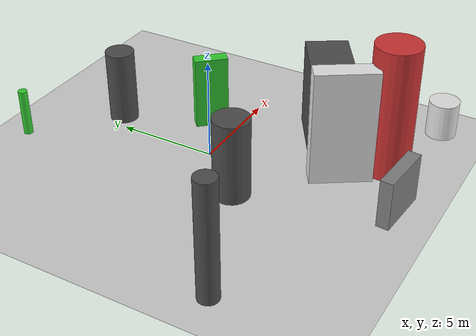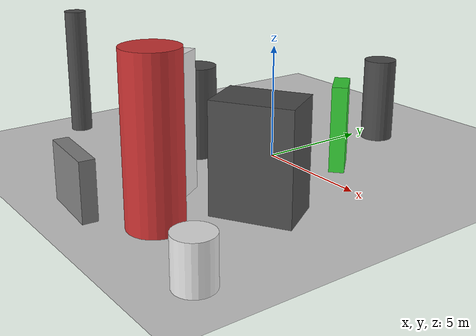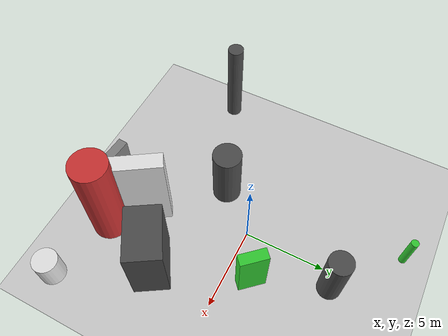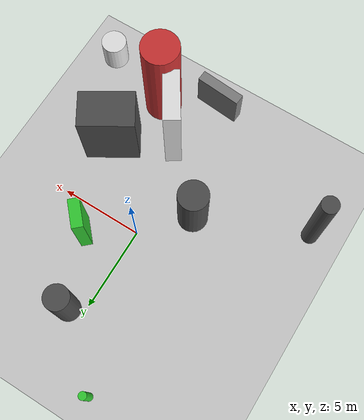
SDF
<?xml version='1.0'?>
<sdf version='1.6'>
  <world name='default'>
    <!-- Sun light -->
    <light name='sun' type='directional'>
      <cast_shadows>1</cast_shadows>
      <pose>0 0 10 0 0 0</pose>
      <diffuse>0.8 0.8 0.8 1</diffuse>
      <specular>0.2 0.2 0.2 1</specular>
      <attenuation>
        <range>1000</range>
        <constant>0.9</constant>
        <linear>0.01</linear>
        <quadratic>0.001</quadratic>
      </attenuation>
      <direction>-0.5 0.1 -0.9</direction>
    </light>

    <!-- Ground plane -->
    <model name='ground_plane'>
      <static>1</static>
      <link name='link'>
        <collision name='collision'>
          <geometry>
            <plane>
              <normal>0 0 1</normal>
              <size>100 100</size>
            </plane>
          </geometry>
          <surface>
            <contact>
              <collide_bitmask>65535</collide_bitmask>
              <ode/>
            </contact>
            <friction>
              <ode>
                <mu>100</mu>
                <mu2>50</mu2>
              </ode>
              <torsional><ode/></torsional>
            </friction>
            <bounce/>
          </surface>
          <max_contacts>10</max_contacts>
        </collision>
        <visual name='visual'>
          <cast_shadows>0</cast_shadows>
          <geometry>
            <plane>
              <normal>0 0 1</normal>
              <size>100 100</size>
            </plane>
          </geometry>
          <material>
            <script>
              <uri>file://media/materials/scripts/gazebo.material</uri>
              <n>Gazebo/Grey</n>
            </script>
          </material>
        </visual>
      </link>
    </model>

    <!-- Environment -->
    <magnetic_field>6e-06 2.3e-05 -4.2e-05</magnetic_field>
    <atmosphere type='adiabatic'/>
    <physics name='default_physics' default='0' type='ode'>
      <gravity>0 0 -9.8</gravity>
      <max_step_size>0.004</max_step_size>
      <real_time_factor>1</real_time_factor>
      <real_time_update_rate>250</real_time_update_rate>
    </physics>
    <scene>
      <ambient>0.4 0.4 0.4 1</ambient>
      <background>0.7 0.7 0.7 1</background>
      <shadows>1</shadows>
    </scene>
    <wind/>
    <spherical_coordinates>
      <surface_model>EARTH_WGS84</surface_model>
      <latitude_deg>0</latitude_deg>
      <longitude_deg>0</longitude_deg>
      <elevation>0</elevation>
      <heading_deg>0</heading_deg>
    </spherical_coordinates>

    <!-- ============ OBSTACLES (10) ============ -->
    <model name='obs_00'>
      <static>1</static>
      <link name='link'>
        <visual name='visual'>
          <geometry>
            <box>
              <size>1.6638 0.6552 3.7301</size>
            </box>
          </geometry>
          <material>
            <script>
              <n>Gazebo/Green</n>
              <uri>file://media/materials/scripts/gazebo.material</uri>
            </script>
            <ambient>0.2 0.8 0.2 1</ambient>
          </material>
        </visual>
        <collision name='collision'>
          <geometry>
            <box>
              <size>1.6638 0.6552 3.7301</size>
            </box>
          </geometry>
          <max_contacts>10</max_contacts>
          <surface>
            <contact><ode/></contact>
            <bounce/>
            <friction>
              <ode><mu>1</mu><mu2>1</mu2></ode>
              <torsional><ode/></torsional>
            </friction>
          </surface>
        </collision>
      </link>
      <pose>2.6391 1.5009 1.8650 0 0 2.3097</pose>
    </model>

    <model name='obs_01'>
      <static>1</static>
      <link name='link'>
        <visual name='visual'>
          <geometry>
            <box>
              <size>3.2270 2.1262 4.4769</size>
            </box>
          </geometry>
          <material>
            <script>
              <n>Gazebo/DarkGrey</n>
              <uri>file://media/materials/scripts/gazebo.material</uri>
            </script>
            <ambient>0.3 0.3 0.3 1</ambient>
          </material>
        </visual>
        <collision name='collision'>
          <geometry>
            <box>
              <size>3.2270 2.1262 4.4769</size>
            </box>
          </geometry>
          <max_contacts>10</max_contacts>
          <surface>
            <contact><ode/></contact>
            <bounce/>
            <friction>
              <ode><mu>1</mu><mu2>1</mu2></ode>
              <torsional><ode/></torsional>
            </friction>
          </surface>
        </collision>
      </link>
      <pose>4.3709 -4.1746 2.2385 0 0 0.5501</pose>
    </model>

    <model name='obs_02'>
      <static>1</static>
      <link name='link'>
        <visual name='visual'>
          <geometry>
            <box>
              <size>0.9720 3.0062 5.7180</size>
            </box>
          </geometry>
          <material>
            <script>
              <n>Gazebo/White</n>
              <uri>file://media/materials/scripts/gazebo.material</uri>
            </script>
            <ambient>0.9 0.9 0.9 1</ambient>
          </material>
        </visual>
        <collision name='collision'>
          <geometry>
            <box>
              <size>0.9720 3.0062 5.7180</size>
            </box>
          </geometry>
          <max_contacts>10</max_contacts>
          <surface>
            <contact><ode/></contact>
            <bounce/>
            <friction>
              <ode><mu>1</mu><mu2>1</mu2></ode>
              <torsional><ode/></torsional>
            </friction>
          </surface>
        </collision>
      </link>
      <pose>1.4133 -6.2537 2.8590 0 0 0.5726</pose>
    </model>

    <model name='obs_03'>
      <static>1</static>
      <link name='link'>
        <visual name='visual'>
          <geometry>
            <cylinder>
              <radius>0.2310</radius>
              <length>2.3963</length>
            </cylinder>
          </geometry>
          <material>
            <script>
              <n>Gazebo/Green</n>
              <uri>file://media/materials/scripts/gazebo.material</uri>
            </script>
            <ambient>0.2 0.8 0.2 1</ambient>
          </material>
        </visual>
        <collision name='collision'>
          <geometry>
            <cylinder>
              <radius>0.2310</radius>
              <length>2.3963</length>
            </cylinder>
          </geometry>
          <max_contacts>10</max_contacts>
          <surface>
            <contact><ode/></contact>
            <bounce/>
            <friction>
              <ode><mu>1</mu><mu2>1</mu2></ode>
              <torsional><ode/></torsional>
            </friction>
          </surface>
        </collision>
      </link>
      <pose>-2.7879 9.0681 1.1981 0 0 0.9219</pose>
    </model>

    <model name='obs_04'>
      <static>1</static>
      <link name='link'>
        <visual name='visual'>
          <geometry>
            <cylinder>
              <radius>0.7236</radius>
              <length>3.7876</length>
            </cylinder>
          </geometry>
          <material>
            <script>
              <n>Gazebo/DarkGrey</n>
              <uri>file://media/materials/scripts/gazebo.material</uri>
            </script>
            <ambient>0.3 0.3 0.3 1</ambient>
          </material>
        </visual>
        <collision name='collision'>
          <geometry>
            <cylinder>
              <radius>0.7236</radius>
              <length>3.7876</length>
            </cylinder>
          </geometry>
          <max_contacts>10</max_contacts>
          <surface>
            <contact><ode/></contact>
            <bounce/>
            <friction>
              <ode><mu>1</mu><mu2>1</mu2></ode>
              <torsional><ode/></torsional>
            </friction>
          </surface>
        </collision>
      </link>
      <pose>0.8816 5.7282 1.8938 0 0 0.9915</pose>
    </model>

    <model name='obs_05'>
      <static>1</static>
      <link name='link'>
        <visual name='visual'>
          <geometry>
            <box>
              <size>0.6282 2.7642 2.4306</size>
            </box>
          </geometry>
          <material>
            <script>
              <n>Gazebo/Grey</n>
              <uri>file://media/materials/scripts/gazebo.material</uri>
            </script>
            <ambient>0.5 0.5 0.5 1</ambient>
          </material>
        </visual>
        <collision name='collision'>
          <geometry>
            <box>
              <size>0.6282 2.7642 2.4306</size>
            </box>
          </geometry>
          <max_contacts>10</max_contacts>
          <surface>
            <contact><ode/></contact>
            <bounce/>
            <friction>
              <ode><mu>1</mu><mu2>1</mu2></ode>
              <torsional><ode/></torsional>
            </friction>
          </surface>
        </collision>
      </link>
      <pose>0.1525 -9.5933 1.2153 0 0 1.4872</pose>
    </model>

    <model name='obs_06'>
      <static>1</static>
      <link name='link'>
        <visual name='visual'>
          <geometry>
            <cylinder>
              <radius>0.7641</radius>
              <length>1.8713</length>
            </cylinder>
          </geometry>
          <material>
            <script>
              <n>Gazebo/White</n>
              <uri>file://media/materials/scripts/gazebo.material</uri>
            </script>
            <ambient>0.9 0.9 0.9 1</ambient>
          </material>
        </visual>
        <collision name='collision'>
          <geometry>
            <cylinder>
              <radius>0.7641</radius>
              <length>1.8713</length>
            </cylinder>
          </geometry>
          <max_contacts>10</max_contacts>
          <surface>
            <contact><ode/></contact>
            <bounce/>
            <friction>
              <ode><mu>1</mu><mu2>1</mu2></ode>
              <torsional><ode/></torsional>
            </friction>
          </surface>
        </collision>
      </link>
      <pose>7.4666 -9.1293 0.9357 0 0 2.7200</pose>
    </model>

    <model name='obs_07'>
      <static>1</static>
      <link name='link'>
        <visual name='visual'>
          <geometry>
            <cylinder>
              <radius>0.8900</radius>
              <length>4.0782</length>
            </cylinder>
          </geometry>
          <material>
            <script>
              <n>Gazebo/DarkGrey</n>
              <uri>file://media/materials/scripts/gazebo.material</uri>
            </script>
            <ambient>0.3 0.3 0.3 1</ambient>
          </material>
        </visual>
        <collision name='collision'>
          <geometry>
            <cylinder>
              <radius>0.8900</radius>
              <length>4.0782</length>
            </cylinder>
          </geometry>
          <max_contacts>10</max_contacts>
          <surface>
            <contact><ode/></contact>
            <bounce/>
            <friction>
              <ode><mu>1</mu><mu2>1</mu2></ode>
              <torsional><ode/></torsional>
            </friction>
          </surface>
        </collision>
      </link>
      <pose>-2.2624 -2.5340 2.0391 0 0 1.3727</pose>
    </model>

    <model name='obs_08'>
      <static>1</static>
      <link name='link'>
        <visual name='visual'>
          <geometry>
            <cylinder>
              <radius>0.4956</radius>
              <length>5.8445</length>
            </cylinder>
          </geometry>
          <material>
            <script>
              <n>Gazebo/DarkGrey</n>
              <uri>file://media/materials/scripts/gazebo.material</uri>
            </script>
            <ambient>0.3 0.3 0.3 1</ambient>
          </material>
        </visual>
        <collision name='collision'>
          <geometry>
            <cylinder>
              <radius>0.4956</radius>
              <length>5.8445</length>
            </cylinder>
          </geometry>
          <max_contacts>10</max_contacts>
          <surface>
            <contact><ode/></contact>
            <bounce/>
            <friction>
              <ode><mu>1</mu><mu2>1</mu2></ode>
              <torsional><ode/></torsional>
            </friction>
          </surface>
        </collision>
      </link>
      <pose>-8.6488 -5.1775 2.9222 0 0 1.0651</pose>
    </model>

    <model name='obs_09'>
      <static>1</static>
      <link name='link'>
        <visual name='visual'>
          <geometry>
            <cylinder>
              <radius>1.1107</radius>
              <length>6.6080</length>
            </cylinder>
          </geometry>
          <material>
            <script>
              <n>Gazebo/Red</n>
              <uri>file://media/materials/scripts/gazebo.material</uri>
            </script>
            <ambient>0.8 0.2 0.2 1</ambient>
          </material>
        </visual>
        <collision name='collision'>
          <geometry>
            <cylinder>
              <radius>1.1107</radius>
              <length>6.6080</length>
            </cylinder>
          </geometry>
          <max_contacts>10</max_contacts>
          <surface>
            <contact><ode/></contact>
            <bounce/>
            <friction>
              <ode><mu>1</mu><mu2>1</mu2></ode>
              <torsional><ode/></torsional>
            </friction>
          </surface>
        </collision>
      </link>
      <pose>3.1421 -7.9267 3.3040 0 0 2.9038</pose>
    </model>

    <!-- GUI camera -->
    <gui fullscreen='0'>
      <camera name='user_camera'>
        <pose>-15 0 18 0 0.85 0.15</pose>
        <view_controller>orbit</view_controller>
        <projection_type>perspective</projection_type>
      </camera>
    </gui>
  </world>
</sdf>
